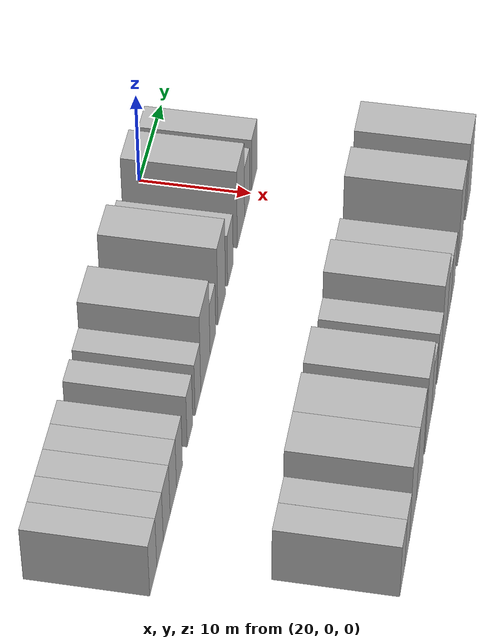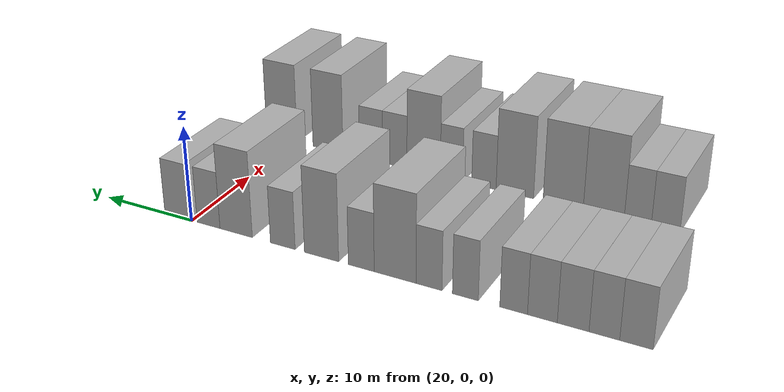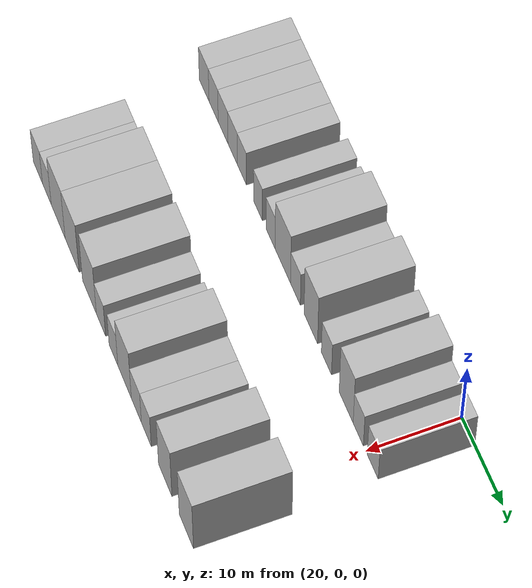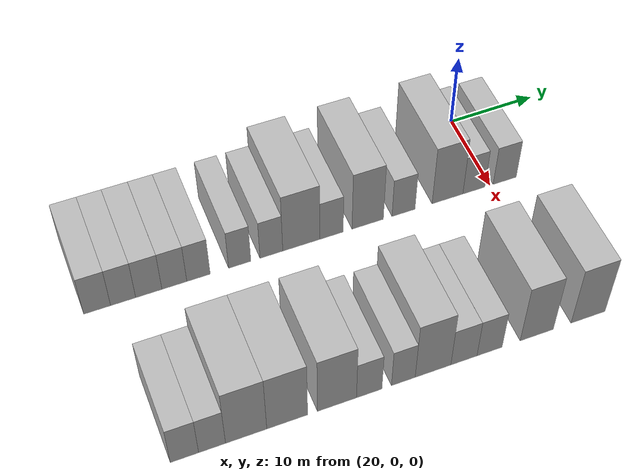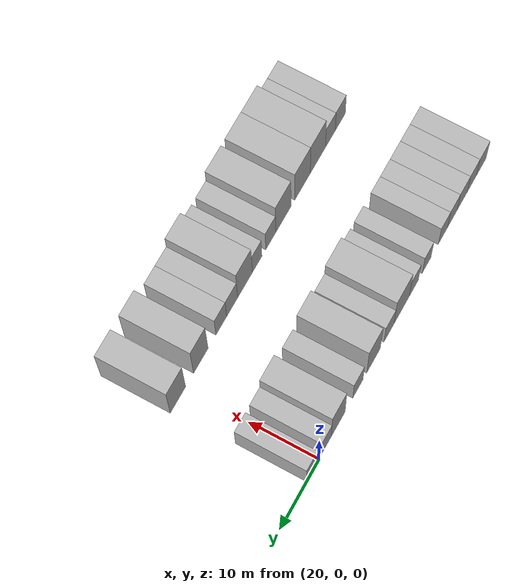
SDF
<sdf version="1.6">
 <world name="default">
  <model name="building_38">
   <static>1</static>
   <pose>25.0000 -44.0632 0 0.000000 0.000000 0.000000</pose>
   <link name="link">
    <pose>0 0 3.00 0 0 0</pose>
    <collision name="collision"><geometry><box><size>10.0000 2.8184 6.0000</size></box></geometry></collision>
    <visual name="visual">
     <cast_shadows>0</cast_shadows>
     <geometry><box><size>10.0000 2.8184 6.0000</size></box></geometry>
     <material>
      <script>
       <uri>model://HANNAS_wall/materials/scripts</uri>
       <uri>model://HANNAS_wall/materials/textures</uri>
       <name>vrc/HANNAS_wall</name>
      </script>
     </material>
    </visual>
   </link>
  </model>
  <model name="building_39">
   <static>1</static>
   <pose>25.0000 -41.3340 0 0.000000 0.000000 0.000000</pose>
   <link name="link">
    <pose>0 0 3.00 0 0 0</pose>
    <collision name="collision"><geometry><box><size>10.0000 2.6401 6.0000</size></box></geometry></collision>
    <visual name="visual">
     <cast_shadows>0</cast_shadows>
     <geometry><box><size>10.0000 2.6401 6.0000</size></box></geometry>
     <material>
      <script>
       <uri>model://HANNAS_wall/materials/scripts</uri>
       <uri>model://HANNAS_wall/materials/textures</uri>
       <name>vrc/HANNAS_wall</name>
      </script>
     </material>
    </visual>
   </link>
  </model>
  <model name="building_40">
   <static>1</static>
   <pose>25.0000 -38.6188 0 0.000000 0.000000 0.000000</pose>
   <link name="link">
    <pose>0 0 3.00 0 0 0</pose>
    <collision name="collision"><geometry><box><size>10.0000 2.7902 6.0000</size></box></geometry></collision>
    <visual name="visual">
     <cast_shadows>0</cast_shadows>
     <geometry><box><size>10.0000 2.7902 6.0000</size></box></geometry>
     <material>
      <script>
       <uri>model://HANNAS_wall/materials/scripts</uri>
       <uri>model://HANNAS_wall/materials/textures</uri>
       <name>vrc/HANNAS_wall</name>
      </script>
     </material>
    </visual>
   </link>
  </model>
  <model name="building_41">
   <static>1</static>
   <pose>25.0000 -35.8860 0 0.000000 0.000000 0.000000</pose>
   <link name="link">
    <pose>0 0 3.00 0 0 0</pose>
    <collision name="collision"><geometry><box><size>10.0000 2.6753 6.0000</size></box></geometry></collision>
    <visual name="visual">
     <cast_shadows>0</cast_shadows>
     <geometry><box><size>10.0000 2.6753 6.0000</size></box></geometry>
     <material>
      <script>
       <uri>model://HANNAS_wall/materials/scripts</uri>
       <uri>model://HANNAS_wall/materials/textures</uri>
       <name>vrc/HANNAS_wall</name>
      </script>
     </material>
    </visual>
   </link>
  </model>
  <model name="building_42">
   <static>1</static>
   <pose>25.0000 -33.2799 0 0.000000 0.000000 0.000000</pose>
   <link name="link">
    <pose>0 0 3.00 0 0 0</pose>
    <collision name="collision"><geometry><box><size>10.0000 2.5370 6.0000</size></box></geometry></collision>
    <visual name="visual">
     <cast_shadows>0</cast_shadows>
     <geometry><box><size>10.0000 2.5370 6.0000</size></box></geometry>
     <material>
      <script>
       <uri>model://HANNAS_wall/materials/scripts</uri>
       <uri>model://HANNAS_wall/materials/textures</uri>
       <name>vrc/HANNAS_wall</name>
      </script>
     </material>
    </visual>
   </link>
  </model>
  <model name="building_43">
   <static>1</static>
   <pose>25.0000 -28.7839 0 0.000000 0.000000 0.000000</pose>
   <link name="link">
    <pose>0 0 3.00 0 0 0</pose>
    <collision name="collision"><geometry><box><size>10.0000 2.4548 6.0000</size></box></geometry></collision>
    <visual name="visual">
     <cast_shadows>0</cast_shadows>
     <geometry><box><size>10.0000 2.4548 6.0000</size></box></geometry>
     <material>
      <script>
       <uri>model://HANNAS_wall/materials/scripts</uri>
       <uri>model://HANNAS_wall/materials/textures</uri>
       <name>vrc/HANNAS_wall</name>
      </script>
     </material>
    </visual>
   </link>
  </model>
  <model name="building_44">
   <static>1</static>
   <pose>25.0000 -25.2906 0 0.000000 0.000000 0.000000</pose>
   <link name="link">
    <pose>0 0 3.00 0 0 0</pose>
    <collision name="collision"><geometry><box><size>10.0000 2.5318 6.0000</size></box></geometry></collision>
    <visual name="visual">
     <cast_shadows>0</cast_shadows>
     <geometry><box><size>10.0000 2.5318 6.0000</size></box></geometry>
     <material>
      <script>
       <uri>model://HANNAS_wall/materials/scripts</uri>
       <uri>model://HANNAS_wall/materials/textures</uri>
       <name>vrc/HANNAS_wall</name>
      </script>
     </material>
    </visual>
   </link>
  </model>
  <model name="building_45">
   <static>1</static>
   <pose>25.0000 -21.9385 0 0.000000 0.000000 0.000000</pose>
   <link name="link">
    <pose>0 0 4.50 0 0 0</pose>
    <collision name="collision"><geometry><box><size>10.0000 4.1725 9.0000</size></box></geometry></collision>
    <visual name="visual">
     <cast_shadows>0</cast_shadows>
     <geometry><box><size>10.0000 4.1725 9.0000</size></box></geometry>
     <material>
      <script>
       <uri>model://HANNAS_wall/materials/scripts</uri>
       <uri>model://HANNAS_wall/materials/textures</uri>
       <name>vrc/HANNAS_wall</name>
      </script>
     </material>
    </visual>
   </link>
  </model>
  <model name="building_46">
   <static>1</static>
   <pose>25.0000 -18.5288 0 0.000000 0.000000 0.000000</pose>
   <link name="link">
    <pose>0 0 3.00 0 0 0</pose>
    <collision name="collision"><geometry><box><size>10.0000 2.6469 6.0000</size></box></geometry></collision>
    <visual name="visual">
     <cast_shadows>0</cast_shadows>
     <geometry><box><size>10.0000 2.6469 6.0000</size></box></geometry>
     <material>
      <script>
       <uri>model://HANNAS_wall/materials/scripts</uri>
       <uri>model://HANNAS_wall/materials/textures</uri>
       <name>vrc/HANNAS_wall</name>
      </script>
     </material>
    </visual>
   </link>
  </model>
  <model name="building_47">
   <static>1</static>
   <pose>25.0000 -14.3986 0 0.000000 0.000000 0.000000</pose>
   <link name="link">
    <pose>0 0 4.50 0 0 0</pose>
    <collision name="collision"><geometry><box><size>10.0000 3.6133 9.0000</size></box></geometry></collision>
    <visual name="visual">
     <cast_shadows>0</cast_shadows>
     <geometry><box><size>10.0000 3.6133 9.0000</size></box></geometry>
     <material>
      <script>
       <uri>model://HANNAS_wall/materials/scripts</uri>
       <uri>model://HANNAS_wall/materials/textures</uri>
       <name>vrc/HANNAS_wall</name>
      </script>
     </material>
    </visual>
   </link>
  </model>
  <model name="building_48">
   <static>1</static>
   <pose>25.0000 -10.2486 0 0.000000 0.000000 0.000000</pose>
   <link name="link">
    <pose>0 0 3.00 0 0 0</pose>
    <collision name="collision"><geometry><box><size>10.0000 2.6869 6.0000</size></box></geometry></collision>
    <visual name="visual">
     <cast_shadows>0</cast_shadows>
     <geometry><box><size>10.0000 2.6869 6.0000</size></box></geometry>
     <material>
      <script>
       <uri>model://HANNAS_wall/materials/scripts</uri>
       <uri>model://HANNAS_wall/materials/textures</uri>
       <name>vrc/HANNAS_wall</name>
      </script>
     </material>
    </visual>
   </link>
  </model>
  <model name="building_49">
   <static>1</static>
   <pose>25.0000 -5.0810 0 0.000000 0.000000 0.000000</pose>
   <link name="link">
    <pose>0 0 4.50 0 0 0</pose>
    <collision name="collision"><geometry><box><size>10.0000 3.6483 9.0000</size></box></geometry></collision>
    <visual name="visual">
     <cast_shadows>0</cast_shadows>
     <geometry><box><size>10.0000 3.6483 9.0000</size></box></geometry>
     <material>
      <script>
       <uri>model://HANNAS_wall/materials/scripts</uri>
       <uri>model://HANNAS_wall/materials/textures</uri>
       <name>vrc/HANNAS_wall</name>
      </script>
     </material>
    </visual>
   </link>
  </model>
  <model name="building_50">
   <static>1</static>
   <pose>25.0000 -1.9401 0 0.000000 0.000000 0.000000</pose>
   <link name="link">
    <pose>0 0 3.00 0 0 0</pose>
    <collision name="collision"><geometry><box><size>10.0000 2.6334 6.0000</size></box></geometry></collision>
    <visual name="visual">
     <cast_shadows>0</cast_shadows>
     <geometry><box><size>10.0000 2.6334 6.0000</size></box></geometry>
     <material>
      <script>
       <uri>model://HANNAS_wall/materials/scripts</uri>
       <uri>model://HANNAS_wall/materials/textures</uri>
       <name>vrc/HANNAS_wall</name>
      </script>
     </material>
    </visual>
   </link>
  </model>
  <model name="building_51">
   <static>1</static>
   <pose>25.0000 1.7735 0 0.000000 0.000000 0.000000</pose>
   <link name="link">
    <pose>0 0 3.00 0 0 0</pose>
    <collision name="collision"><geometry><box><size>10.0000 2.7938 6.0000</size></box></geometry></collision>
    <visual name="visual">
     <cast_shadows>0</cast_shadows>
     <geometry><box><size>10.0000 2.7938 6.0000</size></box></geometry>
     <material>
      <script>
       <uri>model://HANNAS_wall/materials/scripts</uri>
       <uri>model://HANNAS_wall/materials/textures</uri>
       <name>vrc/HANNAS_wall</name>
      </script>
     </material>
    </visual>
   </link>
  </model>
  <model name="building_144">
   <static>1</static>
   <pose>44.0000 -40.8857 0 0.000000 0.000000 0.000000</pose>
   <link name="link">
    <pose>0 0 3.00 0 0 0</pose>
    <collision name="collision"><geometry><box><size>10.0000 2.7849 6.0000</size></box></geometry></collision>
    <visual name="visual">
     <cast_shadows>0</cast_shadows>
     <geometry><box><size>10.0000 2.7849 6.0000</size></box></geometry>
     <material>
      <script>
       <uri>model://HANNAS_wall/materials/scripts</uri>
       <uri>model://HANNAS_wall/materials/textures</uri>
       <name>vrc/HANNAS_wall</name>
      </script>
     </material>
    </visual>
   </link>
  </model>
  <model name="building_145">
   <static>1</static>
   <pose>44.0000 -38.1585 0 0.000000 0.000000 0.000000</pose>
   <link name="link">
    <pose>0 0 3.00 0 0 0</pose>
    <collision name="collision"><geometry><box><size>10.0000 2.6694 6.0000</size></box></geometry></collision>
    <visual name="visual">
     <cast_shadows>0</cast_shadows>
     <geometry><box><size>10.0000 2.6694 6.0000</size></box></geometry>
     <material>
      <script>
       <uri>model://HANNAS_wall/materials/scripts</uri>
       <uri>model://HANNAS_wall/materials/textures</uri>
       <name>vrc/HANNAS_wall</name>
      </script>
     </material>
    </visual>
   </link>
  </model>
  <model name="building_146">
   <static>1</static>
   <pose>44.0000 -34.7565 0 0.000000 0.000000 0.000000</pose>
   <link name="link">
    <pose>0 0 4.50 0 0 0</pose>
    <collision name="collision"><geometry><box><size>10.0000 4.1346 9.0000</size></box></geometry></collision>
    <visual name="visual">
     <cast_shadows>0</cast_shadows>
     <geometry><box><size>10.0000 4.1346 9.0000</size></box></geometry>
     <material>
      <script>
       <uri>model://HANNAS_wall/materials/scripts</uri>
       <uri>model://HANNAS_wall/materials/textures</uri>
       <name>vrc/HANNAS_wall</name>
      </script>
     </material>
    </visual>
   </link>
  </model>
  <model name="building_147">
   <static>1</static>
   <pose>44.0000 -30.6054 0 0.000000 0.000000 0.000000</pose>
   <link name="link">
    <pose>0 0 4.50 0 0 0</pose>
    <collision name="collision"><geometry><box><size>10.0000 4.1677 9.0000</size></box></geometry></collision>
    <visual name="visual">
     <cast_shadows>0</cast_shadows>
     <geometry><box><size>10.0000 4.1677 9.0000</size></box></geometry>
     <material>
      <script>
       <uri>model://HANNAS_wall/materials/scripts</uri>
       <uri>model://HANNAS_wall/materials/textures</uri>
       <name>vrc/HANNAS_wall</name>
      </script>
     </material>
    </visual>
   </link>
  </model>
  <model name="building_148">
   <static>1</static>
   <pose>44.0000 -25.5031 0 0.000000 0.000000 0.000000</pose>
   <link name="link">
    <pose>0 0 4.50 0 0 0</pose>
    <collision name="collision"><geometry><box><size>10.0000 4.0368 9.0000</size></box></geometry></collision>
    <visual name="visual">
     <cast_shadows>0</cast_shadows>
     <geometry><box><size>10.0000 4.0368 9.0000</size></box></geometry>
     <material>
      <script>
       <uri>model://HANNAS_wall/materials/scripts</uri>
       <uri>model://HANNAS_wall/materials/textures</uri>
       <name>vrc/HANNAS_wall</name>
      </script>
     </material>
    </visual>
   </link>
  </model>
  <model name="building_149">
   <static>1</static>
   <pose>44.0000 -22.1449 0 0.000000 0.000000 0.000000</pose>
   <link name="link">
    <pose>0 0 3.00 0 0 0</pose>
    <collision name="collision"><geometry><box><size>10.0000 2.6796 6.0000</size></box></geometry></collision>
    <visual name="visual">
     <cast_shadows>0</cast_shadows>
     <geometry><box><size>10.0000 2.6796 6.0000</size></box></geometry>
     <material>
      <script>
       <uri>model://HANNAS_wall/materials/scripts</uri>
       <uri>model://HANNAS_wall/materials/textures</uri>
       <name>vrc/HANNAS_wall</name>
      </script>
     </material>
    </visual>
   </link>
  </model>
  <model name="building_150">
   <static>1</static>
   <pose>44.0000 -18.5485 0 0.000000 0.000000 0.000000</pose>
   <link name="link">
    <pose>0 0 3.00 0 0 0</pose>
    <collision name="collision"><geometry><box><size>10.0000 2.5133 6.0000</size></box></geometry></collision>
    <visual name="visual">
     <cast_shadows>0</cast_shadows>
     <geometry><box><size>10.0000 2.5133 6.0000</size></box></geometry>
     <material>
      <script>
       <uri>model://HANNAS_wall/materials/scripts</uri>
       <uri>model://HANNAS_wall/materials/textures</uri>
       <name>vrc/HANNAS_wall</name>
      </script>
     </material>
    </visual>
   </link>
  </model>
  <model name="building_151">
   <static>1</static>
   <pose>44.0000 -15.3754 0 0.000000 0.000000 0.000000</pose>
   <link name="link">
    <pose>0 0 4.50 0 0 0</pose>
    <collision name="collision"><geometry><box><size>10.0000 3.8329 9.0000</size></box></geometry></collision>
    <visual name="visual">
     <cast_shadows>0</cast_shadows>
     <geometry><box><size>10.0000 3.8329 9.0000</size></box></geometry>
     <material>
      <script>
       <uri>model://HANNAS_wall/materials/scripts</uri>
       <uri>model://HANNAS_wall/materials/textures</uri>
       <name>vrc/HANNAS_wall</name>
      </script>
     </material>
    </visual>
   </link>
  </model>
  <model name="building_152">
   <static>1</static>
   <pose>44.0000 -12.0380 0 0.000000 0.000000 0.000000</pose>
   <link name="link">
    <pose>0 0 3.00 0 0 0</pose>
    <collision name="collision"><geometry><box><size>10.0000 2.8419 6.0000</size></box></geometry></collision>
    <visual name="visual">
     <cast_shadows>0</cast_shadows>
     <geometry><box><size>10.0000 2.8419 6.0000</size></box></geometry>
     <material>
      <script>
       <uri>model://HANNAS_wall/materials/scripts</uri>
       <uri>model://HANNAS_wall/materials/textures</uri>
       <name>vrc/HANNAS_wall</name>
      </script>
     </material>
    </visual>
   </link>
  </model>
  <model name="building_153">
   <static>1</static>
   <pose>44.0000 -9.2383 0 0.000000 0.000000 0.000000</pose>
   <link name="link">
    <pose>0 0 3.00 0 0 0</pose>
    <collision name="collision"><geometry><box><size>10.0000 2.7574 6.0000</size></box></geometry></collision>
    <visual name="visual">
     <cast_shadows>0</cast_shadows>
     <geometry><box><size>10.0000 2.7574 6.0000</size></box></geometry>
     <material>
      <script>
       <uri>model://HANNAS_wall/materials/scripts</uri>
       <uri>model://HANNAS_wall/materials/textures</uri>
       <name>vrc/HANNAS_wall</name>
      </script>
     </material>
    </visual>
   </link>
  </model>
  <model name="building_154">
   <static>1</static>
   <pose>44.0000 -4.0123 0 0.000000 0.000000 0.000000</pose>
   <link name="link">
    <pose>0 0 4.50 0 0 0</pose>
    <collision name="collision"><geometry><box><size>10.0000 3.6947 9.0000</size></box></geometry></collision>
    <visual name="visual">
     <cast_shadows>0</cast_shadows>
     <geometry><box><size>10.0000 3.6947 9.0000</size></box></geometry>
     <material>
      <script>
       <uri>model://HANNAS_wall/materials/scripts</uri>
       <uri>model://HANNAS_wall/materials/textures</uri>
       <name>vrc/HANNAS_wall</name>
      </script>
     </material>
    </visual>
   </link>
  </model>
  <model name="building_155">
   <static>1</static>
   <pose>44.0000 1.7662 0 0.000000 0.000000 0.000000</pose>
   <link name="link">
    <pose>0 0 4.50 0 0 0</pose>
    <collision name="collision"><geometry><box><size>10.0000 3.8622 9.0000</size></box></geometry></collision>
    <visual name="visual">
     <cast_shadows>0</cast_shadows>
     <geometry><box><size>10.0000 3.8622 9.0000</size></box></geometry>
     <material>
      <script>
       <uri>model://HANNAS_wall/materials/scripts</uri>
       <uri>model://HANNAS_wall/materials/textures</uri>
       <name>vrc/HANNAS_wall</name>
      </script>
     </material>
    </visual>
   </link>
  </model>
 </world>
</sdf>
